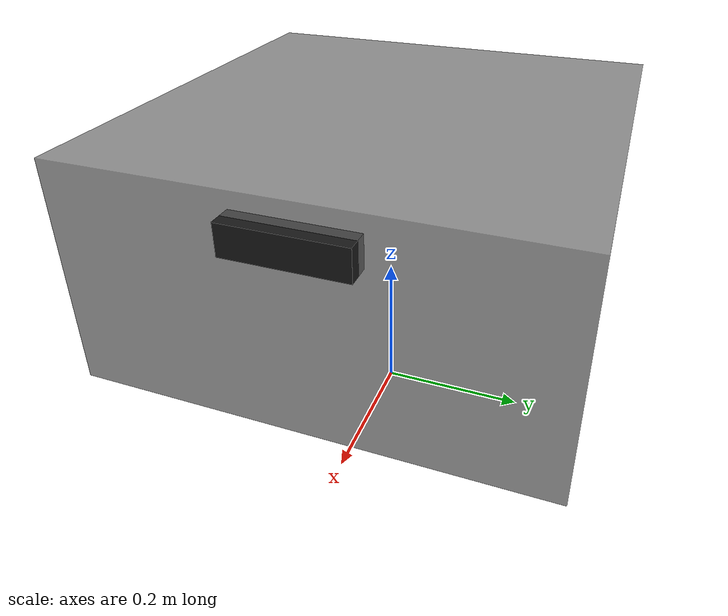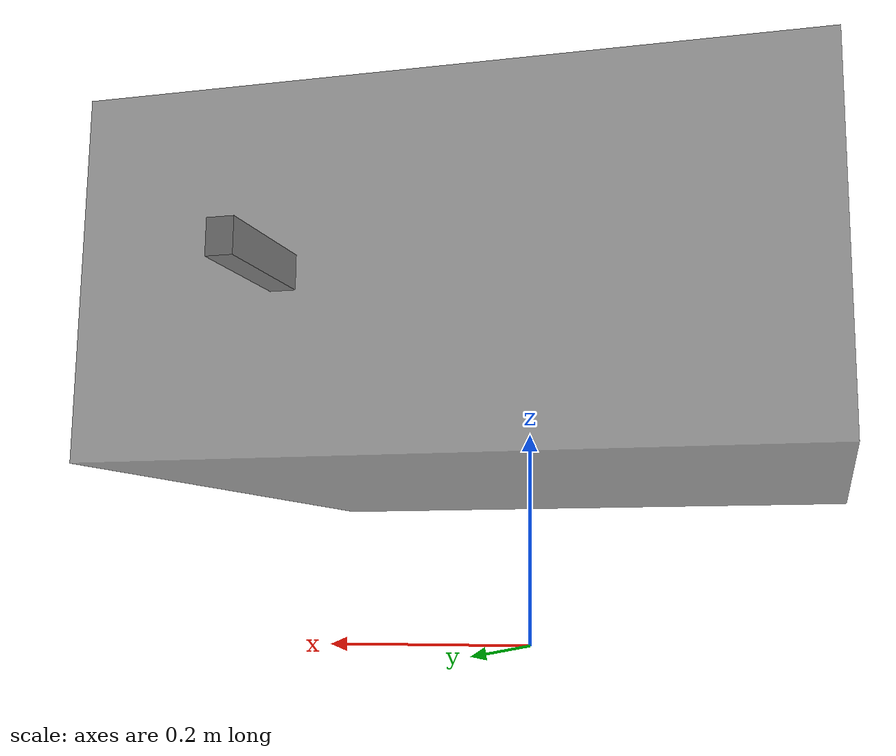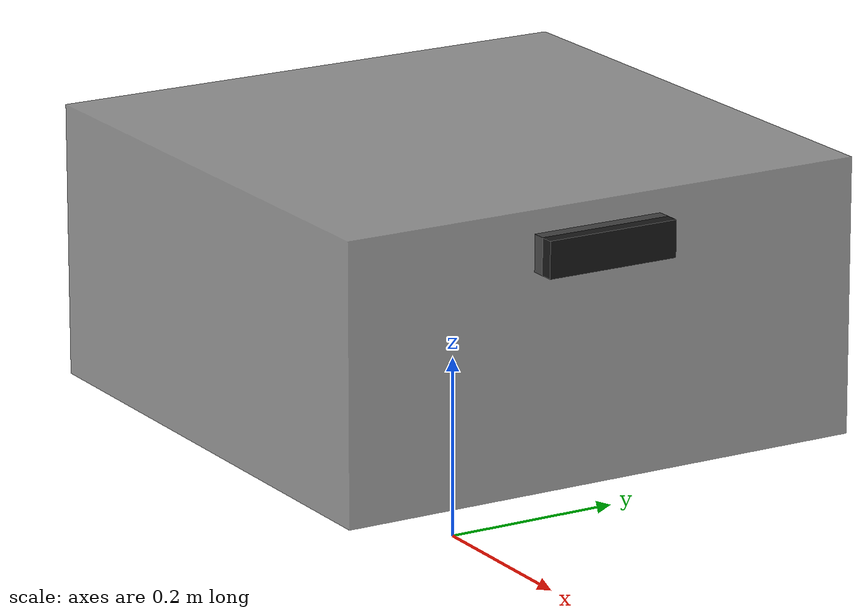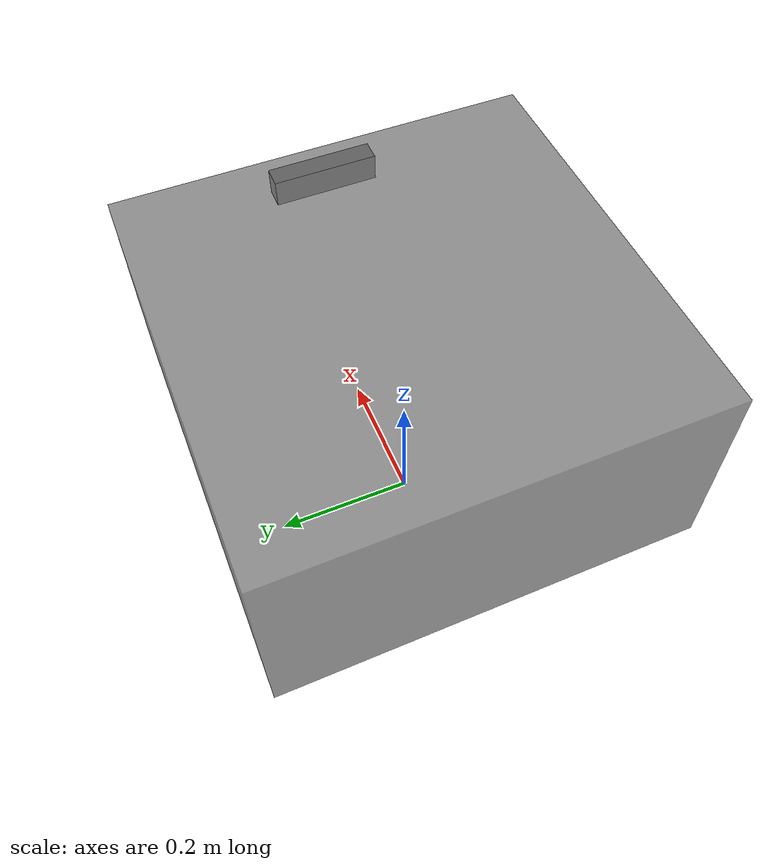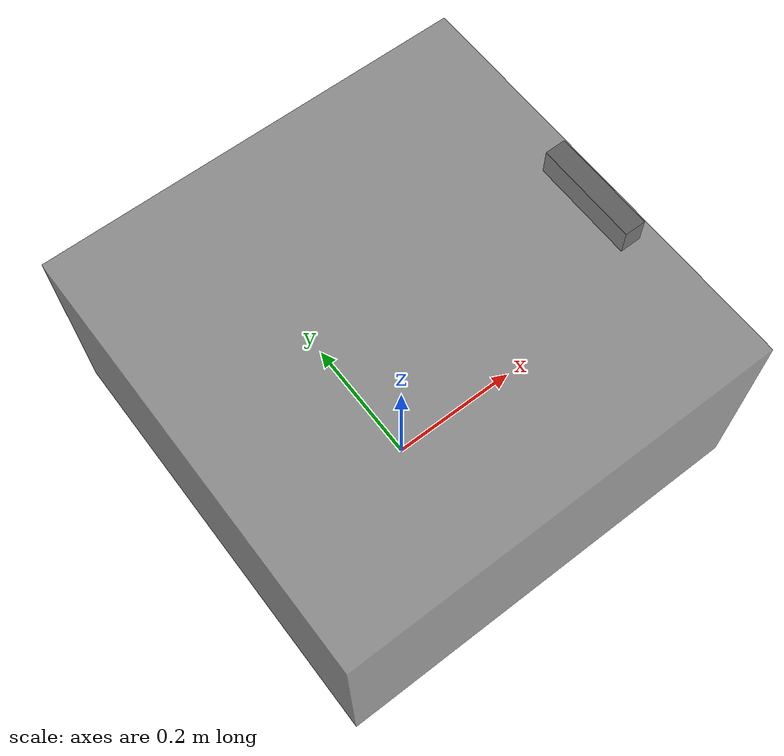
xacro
<?xml version="1.0"?>
<robot xmlns:xacro="http://www.ros.org/wiki/xacro" name="ezrassor">

  <!-- Robot parameters -->
  <xacro:property name="body_length" value="0.6"/>
  <xacro:property name="body_width" value="0.6"/>
  <xacro:property name="body_height" value="0.3"/>
  <xacro:property name="ground_clearance" value="0.15"/>

  <!-- Depth camera position relative to base_link (front-mounted) -->
  <xacro:property name="camera_x" value="0.3"/>
  <xacro:property name="camera_y" value="0.0"/>
  <xacro:property name="camera_z" value="0.1"/>

  <!-- ==================== Base ==================== -->

  <!-- Base footprint: ground-level frame for NAV2 -->
  <link name="base_footprint"/>

  <!-- Base link: main robot body -->
  <link name="base_link">
    <visual>
      <origin xyz="0 0 0" rpy="0 0 0"/>
      <geometry>
        <box size="${body_length} ${body_width} ${body_height}"/>
      </geometry>
      <material name="grey">
        <color rgba="0.5 0.5 0.5 0.8"/>
      </material>
    </visual>

    <collision>
      <origin xyz="0 0 0" rpy="0 0 0"/>
      <geometry>
        <box size="${body_length} ${body_width} ${body_height}"/>
      </geometry>
    </collision>
  </link>

  <joint name="base_joint" type="fixed">
    <parent link="base_footprint"/>
    <child link="base_link"/>
    <origin xyz="0 0 ${ground_clearance + body_height/2}" rpy="0 0 0"/>
  </joint>

  <!-- ==================== Depth Camera (Orbbec Astra Pro) ==================== -->

  <!-- Camera body: front-mounted on the rover -->
  <link name="camera_link">
    <visual>
      <origin xyz="0 0 0" rpy="0 0 0"/>
      <geometry>
        <box size="0.03 0.15 0.04"/>
      </geometry>
      <material name="black">
        <color rgba="0.1 0.1 0.1 1.0"/>
      </material>
    </visual>
  </link>

  <joint name="camera_joint" type="fixed">
    <parent link="base_link"/>
    <child link="camera_link"/>
    <origin xyz="${camera_x} ${camera_y} ${camera_z}" rpy="0 0 0"/>
  </joint>

  <!-- Depth optical frame (used by OrbbecSDK_ROS2 driver) -->
  <!-- Optical frame convention: Z forward, X right, Y down -->
  <link name="camera_depth_frame"/>

  <joint name="camera_depth_joint" type="fixed">
    <parent link="camera_link"/>
    <child link="camera_depth_frame"/>
    <origin xyz="0 0 0" rpy="${-pi/2} 0 ${-pi/2}"/>
  </joint>

  <!-- Color optical frame (for YOLO / RGB processing) -->
  <link name="camera_color_frame"/>

  <joint name="camera_color_joint" type="fixed">
    <parent link="camera_link"/>
    <child link="camera_color_frame"/>
    <origin xyz="0 0 0" rpy="${-pi/2} 0 ${-pi/2}"/>
  </joint>

  <!-- ==================== Virtual Laser Frame ==================== -->

  <link name="laser_frame"/>

  <joint name="laser_joint" type="fixed">
    <parent link="camera_link"/>
    <child link="laser_frame"/>
    <origin xyz="0 0 0" rpy="0 0 0"/>
  </joint>

</robot>
